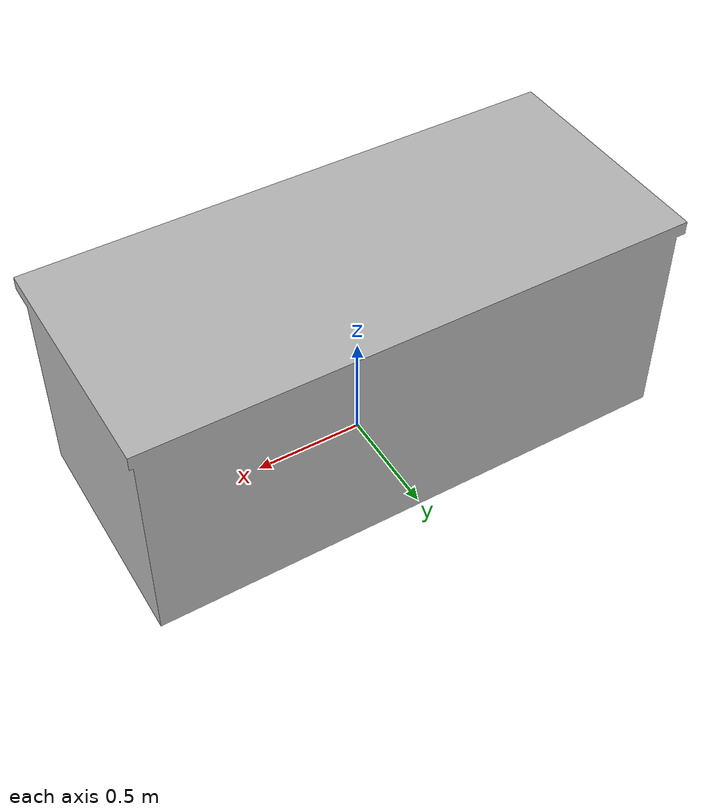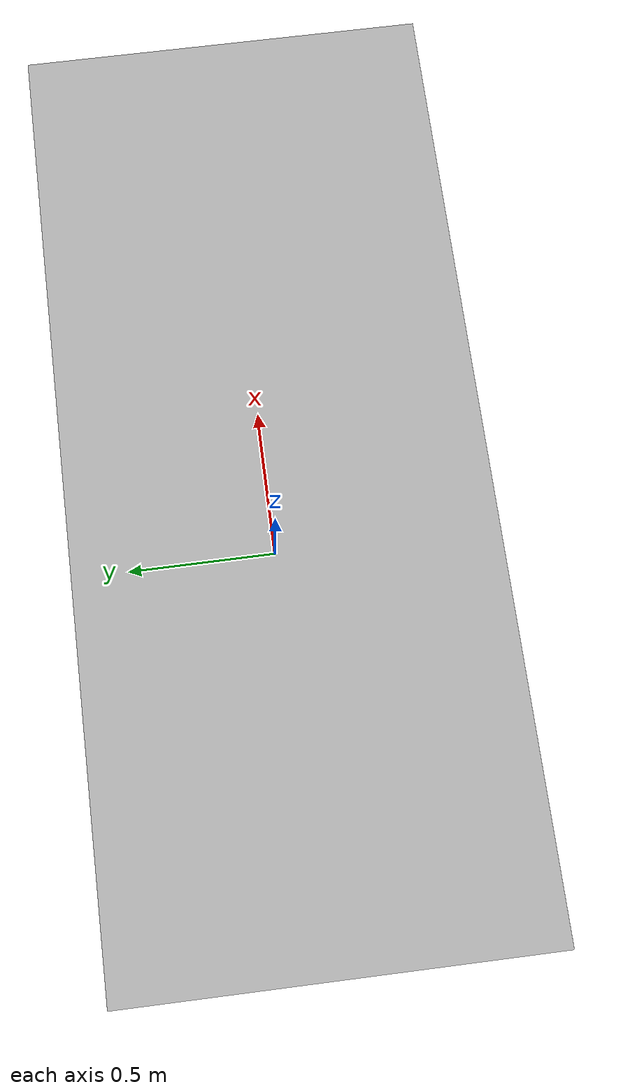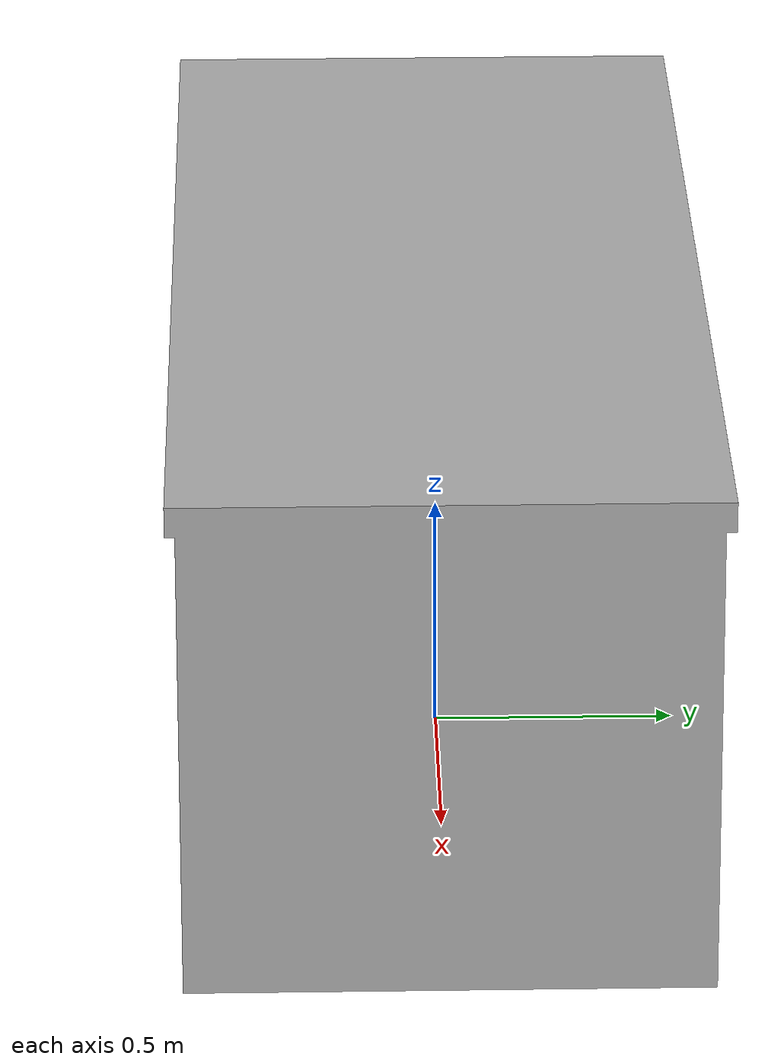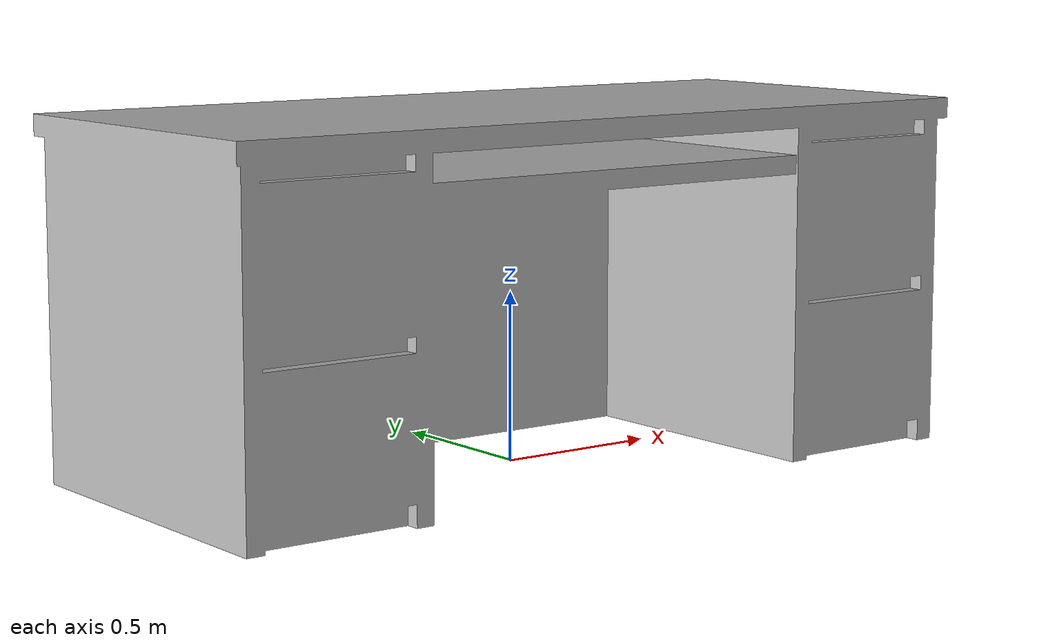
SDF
<?xml version="1.0" ?>
<sdf version="1.6">
  <model name="Desk">
    <static>true</static>
    <link name="link">
      <collision name="collision">
        <geometry>
          <mesh>
            <uri>model://office_desk/meshes/office_desk.dae</uri>
            <scale>1.4 1.4 1.4</scale>
          </mesh>
        </geometry>
      </collision>
      <visual name="visual">
        <geometry>
          <mesh>
            <uri>model://office_desk/meshes/office_desk.dae</uri>
            <scale>1.4 1.4 1.4</scale>
          </mesh>
        </geometry>
      </visual>
    </link>
  </model>
</sdf>
